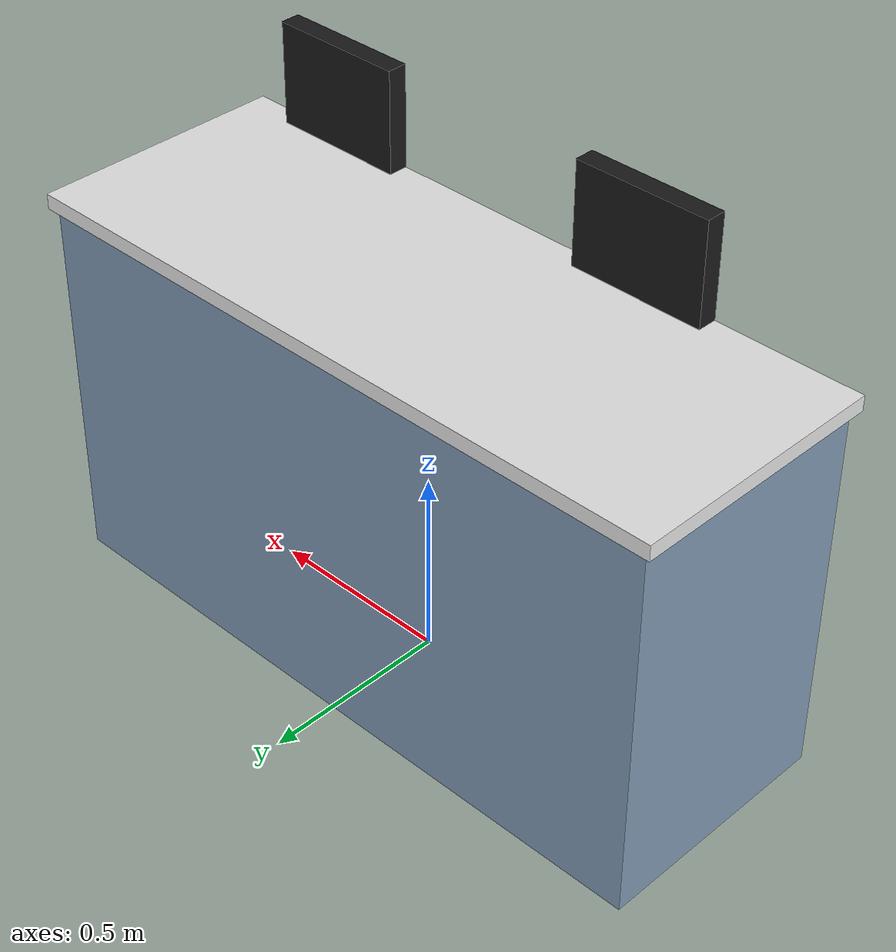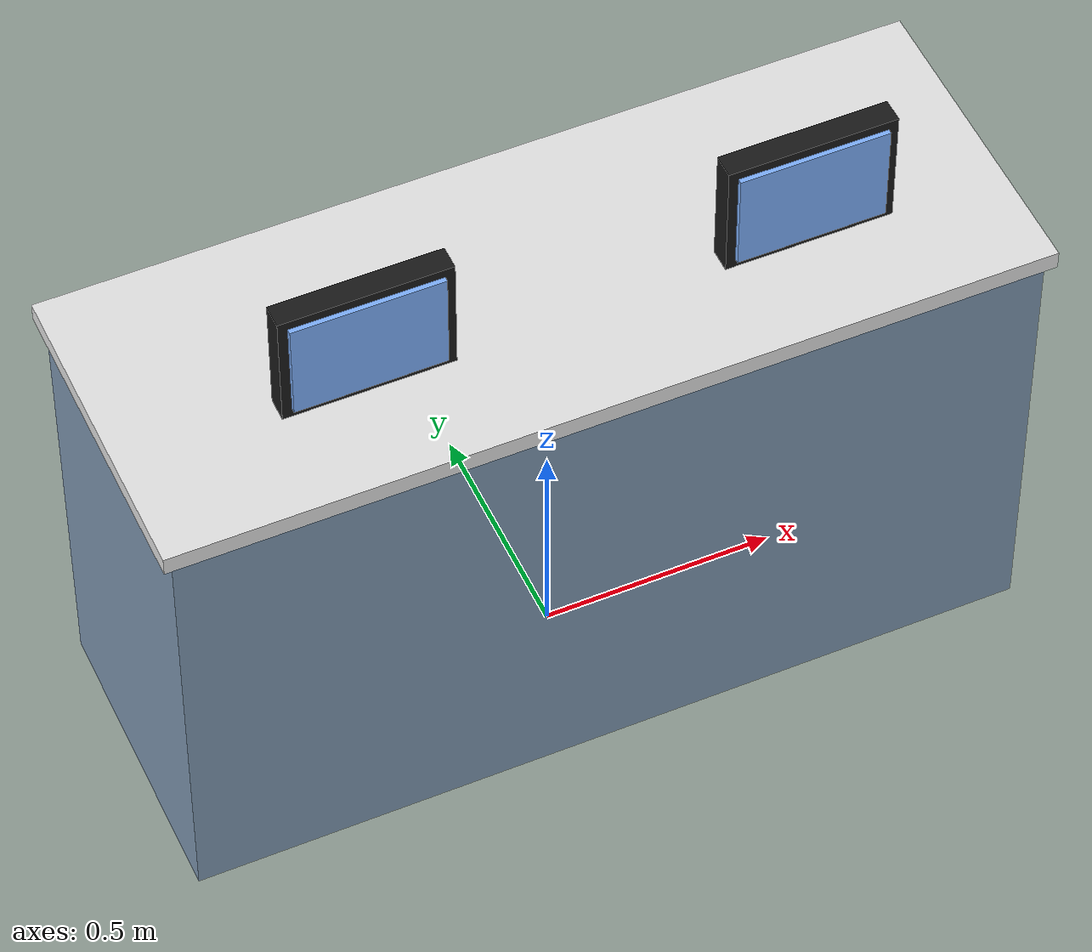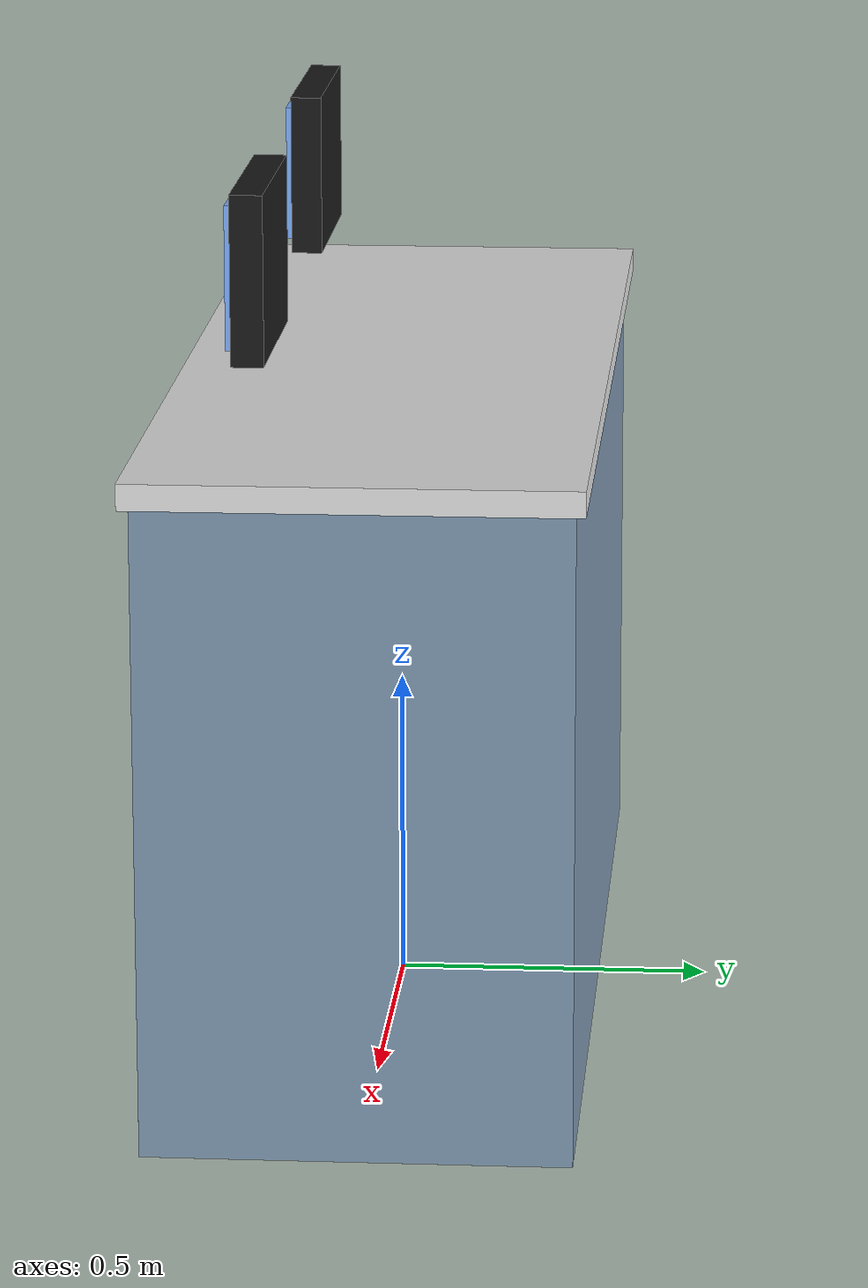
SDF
<?xml version="1.0"?>
<sdf version="1.6">
  <model name="nurse_station">
    <static>true</static>
    <!-- Counter body -->
    <link name="counter">
      <pose>0 0 0.5 0 0 0</pose>
      <collision name="c"><geometry><box><size>1.8 0.65 1.0</size></box></geometry></collision>
      <visual name="v">
        <geometry><box><size>1.8 0.65 1.0</size></box></geometry>
        <material><ambient>0.5 0.6 0.7 1</ambient><diffuse>0.5 0.6 0.7 1</diffuse></material>
      </visual>
    </link>
    <!-- Counter top -->
    <link name="top">
      <pose>0 0 1.02 0 0 0</pose>
      <collision name="c"><geometry><box><size>1.84 0.68 0.04</size></box></geometry></collision>
      <visual name="v">
        <geometry><box><size>1.84 0.68 0.04</size></box></geometry>
        <material><ambient>0.9 0.9 0.9 1</ambient><diffuse>0.9 0.9 0.9 1</diffuse></material>
      </visual>
    </link>
    <!-- 2 monitors -->
    <link name="mon1">
      <pose>-0.45 -0.18 1.28 0 0 0</pose>
      <collision name="c"><geometry><box><size>0.35 0.05 0.26</size></box></geometry></collision>
      <visual name="v">
        <geometry><box><size>0.35 0.05 0.26</size></box></geometry>
        <material><ambient>0.1 0.1 0.1 1</ambient><diffuse>0.1 0.1 0.1 1</diffuse></material>
      </visual>
    </link>
    <link name="mon1_screen">
      <pose>-0.45 -0.21 1.28 0 0 0</pose>
      <visual name="v"><geometry><box><size>0.31 0.01 0.22</size></box></geometry>
        <material><ambient>0.6 0.8 1 1</ambient><diffuse>0.5 0.7 1 1</diffuse>
          <emissive>0.2 0.4 0.7 1</emissive></material></visual>
    </link>
    <link name="mon2">
      <pose>0.45 -0.18 1.28 0 0 0</pose>
      <collision name="c"><geometry><box><size>0.35 0.05 0.26</size></box></geometry></collision>
      <visual name="v">
        <geometry><box><size>0.35 0.05 0.26</size></box></geometry>
        <material><ambient>0.1 0.1 0.1 1</ambient><diffuse>0.1 0.1 0.1 1</diffuse></material>
      </visual>
    </link>
    <link name="mon2_screen">
      <pose>0.45 -0.21 1.28 0 0 0</pose>
      <visual name="v"><geometry><box><size>0.31 0.01 0.22</size></box></geometry>
        <material><ambient>0.6 0.8 1 1</ambient><diffuse>0.5 0.7 1 1</diffuse>
          <emissive>0.2 0.4 0.7 1</emissive></material></visual>
    </link>
  </model>
</sdf>
